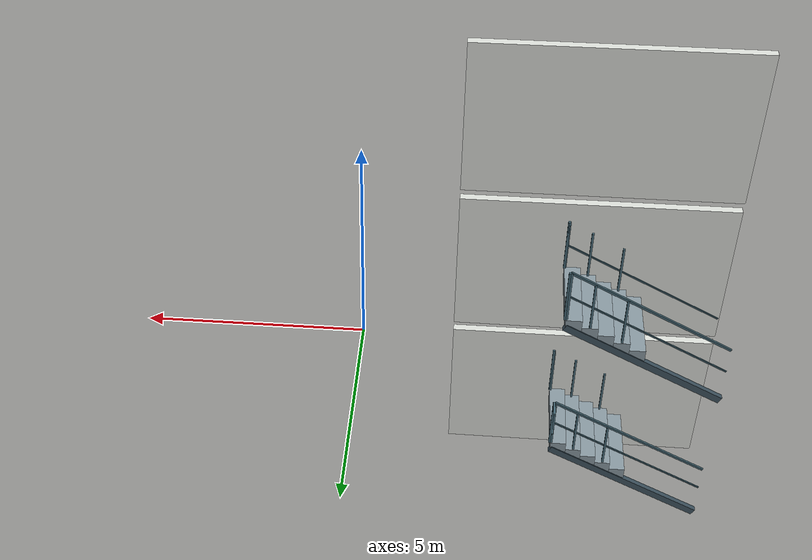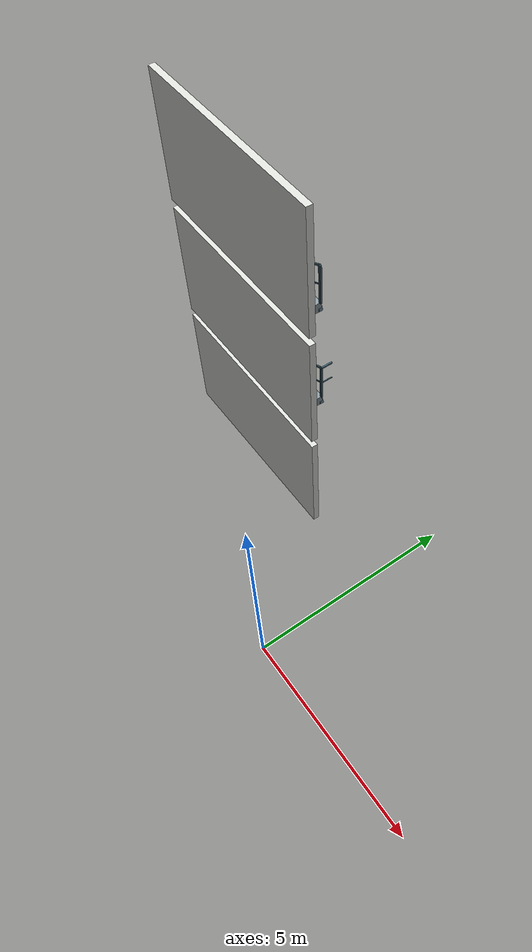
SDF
<sdf version="1.6">
 <world name="three_floor">
  <model name="f1_wall_032">
   <static>true</static>
   <pose>-4.625 3 1.5 0 0 0</pose>
   <link name="f1_wall_032_link">
    <collision name="f1_wall_032_collision"><geometry><box><size>5.05 0.15 3</size></box></geometry></collision>
    <visual name="f1_wall_032_visual">
     <geometry><box><size>5.05 0.15 3</size></box></geometry>
     <material><ambient>.84 .85 .83 1</ambient><diffuse>.84 .85 .83 1</diffuse></material>
    </visual>
   </link>
  </model>
  <model name="f2_wall_032">
   <static>true</static>
   <pose>-4.625 3 4.7 0 0 0</pose>
   <link name="f2_wall_032_link">
    <collision name="f2_wall_032_collision"><geometry><box><size>5.05 0.15 3</size></box></geometry></collision>
    <visual name="f2_wall_032_visual">
     <geometry><box><size>5.05 0.15 3</size></box></geometry>
     <material><ambient>.84 .85 .83 1</ambient><diffuse>.84 .85 .83 1</diffuse></material>
    </visual>
   </link>
  </model>
  <model name="f3_wall_032">
   <static>true</static>
   <pose>-4.625 3 7.9 0 0 0</pose>
   <link name="f3_wall_032_link">
    <collision name="f3_wall_032_collision"><geometry><box><size>5.05 0.15 3</size></box></geometry></collision>
    <visual name="f3_wall_032_visual">
     <geometry><box><size>5.05 0.15 3</size></box></geometry>
     <material><ambient>.84 .85 .83 1</ambient><diffuse>.84 .85 .83 1</diffuse></material>
    </visual>
   </link>
  </model>
  <model name="f1_stair_south_tread_06">
   <static>true</static>
   <pose>-5.45 3.9 0.83 0 0 0</pose>
   <link name="f1_stair_south_tread_06_link">
    <collision name="f1_stair_south_tread_06_collision">
     <geometry><box><size>0.3 1.5 0.26</size></box></geometry>
     <surface><friction><ode><mu>1.0</mu><mu2>1.0</mu2></ode></friction></surface>
    </collision>
    <visual name="f1_stair_south_tread_06_visual">
     <geometry><box><size>0.3 1.5 0.26</size></box></geometry>
     <material>
      <ambient>0.52 0.58 0.61 1</ambient>
      <diffuse>0.52 0.58 0.61 1</diffuse>
      <specular>0.04 0.04 0.04 1</specular>
     </material>
    </visual>
   </link>
  </model>
  <model name="f1_stair_south_tread_07">
   <static>true</static>
   <pose>-5.15 3.9 0.99 0 0 0</pose>
   <link name="f1_stair_south_tread_07_link">
    <collision name="f1_stair_south_tread_07_collision">
     <geometry><box><size>0.3 1.5 0.26</size></box></geometry>
     <surface><friction><ode><mu>1.0</mu><mu2>1.0</mu2></ode></friction></surface>
    </collision>
    <visual name="f1_stair_south_tread_07_visual">
     <geometry><box><size>0.3 1.5 0.26</size></box></geometry>
     <material>
      <ambient>0.52 0.58 0.61 1</ambient>
      <diffuse>0.52 0.58 0.61 1</diffuse>
      <specular>0.04 0.04 0.04 1</specular>
     </material>
    </visual>
   </link>
  </model>
  <model name="f1_stair_south_tread_08">
   <static>true</static>
   <pose>-4.85 3.9 1.15 0 0 0</pose>
   <link name="f1_stair_south_tread_08_link">
    <collision name="f1_stair_south_tread_08_collision">
     <geometry><box><size>0.3 1.5 0.26</size></box></geometry>
     <surface><friction><ode><mu>1.0</mu><mu2>1.0</mu2></ode></friction></surface>
    </collision>
    <visual name="f1_stair_south_tread_08_visual">
     <geometry><box><size>0.3 1.5 0.26</size></box></geometry>
     <material>
      <ambient>0.52 0.58 0.61 1</ambient>
      <diffuse>0.52 0.58 0.61 1</diffuse>
      <specular>0.04 0.04 0.04 1</specular>
     </material>
    </visual>
   </link>
  </model>
  <model name="f1_stair_south_tread_09">
   <static>true</static>
   <pose>-4.55 3.9 1.31 0 0 0</pose>
   <link name="f1_stair_south_tread_09_link">
    <collision name="f1_stair_south_tread_09_collision">
     <geometry><box><size>0.3 1.5 0.26</size></box></geometry>
     <surface><friction><ode><mu>1.0</mu><mu2>1.0</mu2></ode></friction></surface>
    </collision>
    <visual name="f1_stair_south_tread_09_visual">
     <geometry><box><size>0.3 1.5 0.26</size></box></geometry>
     <material>
      <ambient>0.52 0.58 0.61 1</ambient>
      <diffuse>0.52 0.58 0.61 1</diffuse>
      <specular>0.04 0.04 0.04 1</specular>
     </material>
    </visual>
   </link>
  </model>
  <model name="f1_stair_south_tread_10">
   <static>true</static>
   <pose>-4.25 3.9 1.47 0 0 0</pose>
   <link name="f1_stair_south_tread_10_link">
    <collision name="f1_stair_south_tread_10_collision">
     <geometry><box><size>0.3 1.5 0.26</size></box></geometry>
     <surface><friction><ode><mu>1.0</mu><mu2>1.0</mu2></ode></friction></surface>
    </collision>
    <visual name="f1_stair_south_tread_10_visual">
     <geometry><box><size>0.3 1.5 0.26</size></box></geometry>
     <material>
      <ambient>0.52 0.58 0.61 1</ambient>
      <diffuse>0.52 0.58 0.61 1</diffuse>
      <specular>0.04 0.04 0.04 1</specular>
     </material>
    </visual>
   </link>
  </model>
  <model name="f1_stair_south_outer_post_03">
   <static>true</static>
   <pose>-5.15 3.18 1.62 0 0 0</pose>
   <link name="f1_stair_south_outer_post_03_link">
    <collision name="f1_stair_south_outer_post_03_collision">
     <geometry><box><size>0.04 0.04 1</size></box></geometry>
    </collision>
    <visual name="f1_stair_south_outer_post_03_visual">
     <geometry><box><size>0.04 0.04 1</size></box></geometry>
     <material>
      <ambient>0.26 0.39 0.44 1</ambient>
      <diffuse>0.26 0.39 0.44 1</diffuse>
      <specular>0.04 0.04 0.04 1</specular>
     </material>
    </visual>
   </link>
  </model>
  <model name="f1_stair_south_outer_post_04">
   <static>true</static>
   <pose>-4.55 3.18 1.94 0 0 0</pose>
   <link name="f1_stair_south_outer_post_04_link">
    <collision name="f1_stair_south_outer_post_04_collision">
     <geometry><box><size>0.04 0.04 1</size></box></geometry>
    </collision>
    <visual name="f1_stair_south_outer_post_04_visual">
     <geometry><box><size>0.04 0.04 1</size></box></geometry>
     <material>
      <ambient>0.26 0.39 0.44 1</ambient>
      <diffuse>0.26 0.39 0.44 1</diffuse>
      <specular>0.04 0.04 0.04 1</specular>
     </material>
    </visual>
   </link>
  </model>
  <model name="f1_stair_south_outer_post_05">
   <static>true</static>
   <pose>-4.115 3.18 2.136 0 0 0</pose>
   <link name="f1_stair_south_outer_post_05_link">
    <collision name="f1_stair_south_outer_post_05_collision">
     <geometry><box><size>0.04 0.04 1.072</size></box></geometry>
    </collision>
    <visual name="f1_stair_south_outer_post_05_visual">
     <geometry><box><size>0.04 0.04 1.072</size></box></geometry>
     <material>
      <ambient>0.26 0.39 0.44 1</ambient>
      <diffuse>0.26 0.39 0.44 1</diffuse>
      <specular>0.04 0.04 0.04 1</specular>
     </material>
    </visual>
   </link>
  </model>
  <model name="f1_stair_south_inner_stringer">
   <static>true</static>
   <pose>-5.6 4.62 0.64 0 -0.489957326 0</pose>
   <link name="f1_stair_south_inner_stringer_link">
    <collision name="f1_stair_south_inner_stringer_collision">
     <geometry><box><size>3.4 0.1 0.14</size></box></geometry>
    </collision>
    <visual name="f1_stair_south_inner_stringer_visual">
     <geometry><box><size>3.4 0.1 0.14</size></box></geometry>
     <material>
      <ambient>0.23 0.31 0.36 1</ambient>
      <diffuse>0.23 0.31 0.36 1</diffuse>
      <specular>0.04 0.04 0.04 1</specular>
     </material>
    </visual>
   </link>
  </model>
  <model name="f1_stair_south_inner_handrail">
   <static>true</static>
   <pose>-5.6 4.62 1.88 0 -0.489957326 0</pose>
   <link name="f1_stair_south_inner_handrail_link">
    <collision name="f1_stair_south_inner_handrail_collision">
     <geometry><box><size>3.4 0.04 0.04</size></box></geometry>
    </collision>
    <visual name="f1_stair_south_inner_handrail_visual">
     <geometry><box><size>3.4 0.04 0.04</size></box></geometry>
     <material>
      <ambient>0.26 0.39 0.44 1</ambient>
      <diffuse>0.26 0.39 0.44 1</diffuse>
      <specular>0.04 0.04 0.04 1</specular>
     </material>
    </visual>
   </link>
  </model>
  <model name="f1_stair_south_inner_midrail">
   <static>true</static>
   <pose>-5.6 4.62 1.35 0 -0.489957326 0</pose>
   <link name="f1_stair_south_inner_midrail_link">
    <collision name="f1_stair_south_inner_midrail_collision">
     <geometry><box><size>3.4 0.025 0.025</size></box></geometry>
    </collision>
    <visual name="f1_stair_south_inner_midrail_visual">
     <geometry><box><size>3.4 0.025 0.025</size></box></geometry>
     <material>
      <ambient>0.26 0.39 0.44 1</ambient>
      <diffuse>0.26 0.39 0.44 1</diffuse>
      <specular>0.04 0.04 0.04 1</specular>
     </material>
    </visual>
   </link>
  </model>
  <model name="f1_stair_south_inner_post_03">
   <static>true</static>
   <pose>-5.15 4.62 1.62 0 0 0</pose>
   <link name="f1_stair_south_inner_post_03_link">
    <collision name="f1_stair_south_inner_post_03_collision">
     <geometry><box><size>0.04 0.04 1</size></box></geometry>
    </collision>
    <visual name="f1_stair_south_inner_post_03_visual">
     <geometry><box><size>0.04 0.04 1</size></box></geometry>
     <material>
      <ambient>0.26 0.39 0.44 1</ambient>
      <diffuse>0.26 0.39 0.44 1</diffuse>
      <specular>0.04 0.04 0.04 1</specular>
     </material>
    </visual>
   </link>
  </model>
  <model name="f1_stair_south_inner_post_04">
   <static>true</static>
   <pose>-4.55 4.62 1.94 0 0 0</pose>
   <link name="f1_stair_south_inner_post_04_link">
    <collision name="f1_stair_south_inner_post_04_collision">
     <geometry><box><size>0.04 0.04 1</size></box></geometry>
    </collision>
    <visual name="f1_stair_south_inner_post_04_visual">
     <geometry><box><size>0.04 0.04 1</size></box></geometry>
     <material>
      <ambient>0.26 0.39 0.44 1</ambient>
      <diffuse>0.26 0.39 0.44 1</diffuse>
      <specular>0.04 0.04 0.04 1</specular>
     </material>
    </visual>
   </link>
  </model>
  <model name="f1_stair_south_inner_post_05">
   <static>true</static>
   <pose>-4.115 4.62 2.136 0 0 0</pose>
   <link name="f1_stair_south_inner_post_05_link">
    <collision name="f1_stair_south_inner_post_05_collision">
     <geometry><box><size>0.04 0.04 1.072</size></box></geometry>
    </collision>
    <visual name="f1_stair_south_inner_post_05_visual">
     <geometry><box><size>0.04 0.04 1.072</size></box></geometry>
     <material>
      <ambient>0.26 0.39 0.44 1</ambient>
      <diffuse>0.26 0.39 0.44 1</diffuse>
      <specular>0.04 0.04 0.04 1</specular>
     </material>
    </visual>
   </link>
  </model>
  <model name="f1_stair_mid_south_guard_post_00">
   <static>true</static>
   <pose>-4.1 3.18 2.14 0 0 0</pose>
   <link name="f1_stair_mid_south_guard_post_00_link">
    <collision name="f1_stair_mid_south_guard_post_00_collision">
     <geometry><box><size>0.04 0.04 1.08</size></box></geometry>
    </collision>
    <visual name="f1_stair_mid_south_guard_post_00_visual">
     <geometry><box><size>0.04 0.04 1.08</size></box></geometry>
     <material>
      <ambient>0.26 0.39 0.44 1</ambient>
      <diffuse>0.26 0.39 0.44 1</diffuse>
      <specular>0.04 0.04 0.04 1</specular>
     </material>
    </visual>
   </link>
  </model>
  <model name="f1_stair_mid_west_gap_guard_top">
   <static>true</static>
   <pose>-4.08 4.775 2.68 0 0 1.570796327</pose>
   <link name="f1_stair_mid_west_gap_guard_top_link">
    <collision name="f1_stair_mid_west_gap_guard_top_collision">
     <geometry><box><size>0.31 0.04 0.04</size></box></geometry>
    </collision>
    <visual name="f1_stair_mid_west_gap_guard_top_visual">
     <geometry><box><size>0.31 0.04 0.04</size></box></geometry>
     <material>
      <ambient>0.26 0.39 0.44 1</ambient>
      <diffuse>0.26 0.39 0.44 1</diffuse>
      <specular>0.04 0.04 0.04 1</specular>
     </material>
    </visual>
   </link>
  </model>
  <model name="f1_stair_mid_west_gap_guard_mid">
   <static>true</static>
   <pose>-4.08 4.775 2.15 0 0 1.570796327</pose>
   <link name="f1_stair_mid_west_gap_guard_mid_link">
    <collision name="f1_stair_mid_west_gap_guard_mid_collision">
     <geometry><box><size>0.31 0.025 0.025</size></box></geometry>
    </collision>
    <visual name="f1_stair_mid_west_gap_guard_mid_visual">
     <geometry><box><size>0.31 0.025 0.025</size></box></geometry>
     <material>
      <ambient>0.26 0.39 0.44 1</ambient>
      <diffuse>0.26 0.39 0.44 1</diffuse>
      <specular>0.04 0.04 0.04 1</specular>
     </material>
    </visual>
   </link>
  </model>
  <model name="f1_stair_mid_west_gap_guard_post_00">
   <static>true</static>
   <pose>-4.08 4.62 2.14 0 0 0</pose>
   <link name="f1_stair_mid_west_gap_guard_post_00_link">
    <collision name="f1_stair_mid_west_gap_guard_post_00_collision">
     <geometry><box><size>0.04 0.04 1.08</size></box></geometry>
    </collision>
    <visual name="f1_stair_mid_west_gap_guard_post_00_visual">
     <geometry><box><size>0.04 0.04 1.08</size></box></geometry>
     <material>
      <ambient>0.26 0.39 0.44 1</ambient>
      <diffuse>0.26 0.39 0.44 1</diffuse>
      <specular>0.04 0.04 0.04 1</specular>
     </material>
    </visual>
   </link>
  </model>
  <model name="f2_stair_south_tread_06">
   <static>true</static>
   <pose>-5.45 3.9 4.03 0 0 0</pose>
   <link name="f2_stair_south_tread_06_link">
    <collision name="f2_stair_south_tread_06_collision">
     <geometry><box><size>0.3 1.5 0.26</size></box></geometry>
     <surface><friction><ode><mu>1.0</mu><mu2>1.0</mu2></ode></friction></surface>
    </collision>
    <visual name="f2_stair_south_tread_06_visual">
     <geometry><box><size>0.3 1.5 0.26</size></box></geometry>
     <material>
      <ambient>0.52 0.58 0.61 1</ambient>
      <diffuse>0.52 0.58 0.61 1</diffuse>
      <specular>0.04 0.04 0.04 1</specular>
     </material>
    </visual>
   </link>
  </model>
  <model name="f2_stair_south_tread_07">
   <static>true</static>
   <pose>-5.15 3.9 4.19 0 0 0</pose>
   <link name="f2_stair_south_tread_07_link">
    <collision name="f2_stair_south_tread_07_collision">
     <geometry><box><size>0.3 1.5 0.26</size></box></geometry>
     <surface><friction><ode><mu>1.0</mu><mu2>1.0</mu2></ode></friction></surface>
    </collision>
    <visual name="f2_stair_south_tread_07_visual">
     <geometry><box><size>0.3 1.5 0.26</size></box></geometry>
     <material>
      <ambient>0.52 0.58 0.61 1</ambient>
      <diffuse>0.52 0.58 0.61 1</diffuse>
      <specular>0.04 0.04 0.04 1</specular>
     </material>
    </visual>
   </link>
  </model>
  <model name="f2_stair_south_tread_08">
   <static>true</static>
   <pose>-4.85 3.9 4.35 0 0 0</pose>
   <link name="f2_stair_south_tread_08_link">
    <collision name="f2_stair_south_tread_08_collision">
     <geometry><box><size>0.3 1.5 0.26</size></box></geometry>
     <surface><friction><ode><mu>1.0</mu><mu2>1.0</mu2></ode></friction></surface>
    </collision>
    <visual name="f2_stair_south_tread_08_visual">
     <geometry><box><size>0.3 1.5 0.26</size></box></geometry>
     <material>
      <ambient>0.52 0.58 0.61 1</ambient>
      <diffuse>0.52 0.58 0.61 1</diffuse>
      <specular>0.04 0.04 0.04 1</specular>
     </material>
    </visual>
   </link>
  </model>
  <model name="f2_stair_south_tread_09">
   <static>true</static>
   <pose>-4.55 3.9 4.51 0 0 0</pose>
   <link name="f2_stair_south_tread_09_link">
    <collision name="f2_stair_south_tread_09_collision">
     <geometry><box><size>0.3 1.5 0.26</size></box></geometry>
     <surface><friction><ode><mu>1.0</mu><mu2>1.0</mu2></ode></friction></surface>
    </collision>
    <visual name="f2_stair_south_tread_09_visual">
     <geometry><box><size>0.3 1.5 0.26</size></box></geometry>
     <material>
      <ambient>0.52 0.58 0.61 1</ambient>
      <diffuse>0.52 0.58 0.61 1</diffuse>
      <specular>0.04 0.04 0.04 1</specular>
     </material>
    </visual>
   </link>
  </model>
  <model name="f2_stair_south_tread_10">
   <static>true</static>
   <pose>-4.25 3.9 4.67 0 0 0</pose>
   <link name="f2_stair_south_tread_10_link">
    <collision name="f2_stair_south_tread_10_collision">
     <geometry><box><size>0.3 1.5 0.26</size></box></geometry>
     <surface><friction><ode><mu>1.0</mu><mu2>1.0</mu2></ode></friction></surface>
    </collision>
    <visual name="f2_stair_south_tread_10_visual">
     <geometry><box><size>0.3 1.5 0.26</size></box></geometry>
     <material>
      <ambient>0.52 0.58 0.61 1</ambient>
      <diffuse>0.52 0.58 0.61 1</diffuse>
      <specular>0.04 0.04 0.04 1</specular>
     </material>
    </visual>
   </link>
  </model>
  <model name="f2_stair_south_outer_midrail">
   <static>true</static>
   <pose>-5.6 3.18 4.55 0 -0.489957326 0</pose>
   <link name="f2_stair_south_outer_midrail_link">
    <collision name="f2_stair_south_outer_midrail_collision">
     <geometry><box><size>3.4 0.025 0.025</size></box></geometry>
    </collision>
    <visual name="f2_stair_south_outer_midrail_visual">
     <geometry><box><size>3.4 0.025 0.025</size></box></geometry>
     <material>
      <ambient>0.26 0.39 0.44 1</ambient>
      <diffuse>0.26 0.39 0.44 1</diffuse>
      <specular>0.04 0.04 0.04 1</specular>
     </material>
    </visual>
   </link>
  </model>
  <model name="f2_stair_south_outer_post_03">
   <static>true</static>
   <pose>-5.15 3.18 4.82 0 0 0</pose>
   <link name="f2_stair_south_outer_post_03_link">
    <collision name="f2_stair_south_outer_post_03_collision">
     <geometry><box><size>0.04 0.04 1</size></box></geometry>
    </collision>
    <visual name="f2_stair_south_outer_post_03_visual">
     <geometry><box><size>0.04 0.04 1</size></box></geometry>
     <material>
      <ambient>0.26 0.39 0.44 1</ambient>
      <diffuse>0.26 0.39 0.44 1</diffuse>
      <specular>0.04 0.04 0.04 1</specular>
     </material>
    </visual>
   </link>
  </model>
  <model name="f2_stair_south_outer_post_04">
   <static>true</static>
   <pose>-4.55 3.18 5.14 0 0 0</pose>
   <link name="f2_stair_south_outer_post_04_link">
    <collision name="f2_stair_south_outer_post_04_collision">
     <geometry><box><size>0.04 0.04 1</size></box></geometry>
    </collision>
    <visual name="f2_stair_south_outer_post_04_visual">
     <geometry><box><size>0.04 0.04 1</size></box></geometry>
     <material>
      <ambient>0.26 0.39 0.44 1</ambient>
      <diffuse>0.26 0.39 0.44 1</diffuse>
      <specular>0.04 0.04 0.04 1</specular>
     </material>
    </visual>
   </link>
  </model>
  <model name="f2_stair_south_outer_post_05">
   <static>true</static>
   <pose>-4.115 3.18 5.336 0 0 0</pose>
   <link name="f2_stair_south_outer_post_05_link">
    <collision name="f2_stair_south_outer_post_05_collision">
     <geometry><box><size>0.04 0.04 1.072</size></box></geometry>
    </collision>
    <visual name="f2_stair_south_outer_post_05_visual">
     <geometry><box><size>0.04 0.04 1.072</size></box></geometry>
     <material>
      <ambient>0.26 0.39 0.44 1</ambient>
      <diffuse>0.26 0.39 0.44 1</diffuse>
      <specular>0.04 0.04 0.04 1</specular>
     </material>
    </visual>
   </link>
  </model>
  <model name="f2_stair_south_inner_stringer">
   <static>true</static>
   <pose>-5.6 4.62 3.84 0 -0.489957326 0</pose>
   <link name="f2_stair_south_inner_stringer_link">
    <collision name="f2_stair_south_inner_stringer_collision">
     <geometry><box><size>3.4 0.1 0.14</size></box></geometry>
    </collision>
    <visual name="f2_stair_south_inner_stringer_visual">
     <geometry><box><size>3.4 0.1 0.14</size></box></geometry>
     <material>
      <ambient>0.23 0.31 0.36 1</ambient>
      <diffuse>0.23 0.31 0.36 1</diffuse>
      <specular>0.04 0.04 0.04 1</specular>
     </material>
    </visual>
   </link>
  </model>
  <model name="f2_stair_south_inner_handrail">
   <static>true</static>
   <pose>-5.6 4.62 5.08 0 -0.489957326 0</pose>
   <link name="f2_stair_south_inner_handrail_link">
    <collision name="f2_stair_south_inner_handrail_collision">
     <geometry><box><size>3.4 0.04 0.04</size></box></geometry>
    </collision>
    <visual name="f2_stair_south_inner_handrail_visual">
     <geometry><box><size>3.4 0.04 0.04</size></box></geometry>
     <material>
      <ambient>0.26 0.39 0.44 1</ambient>
      <diffuse>0.26 0.39 0.44 1</diffuse>
      <specular>0.04 0.04 0.04 1</specular>
     </material>
    </visual>
   </link>
  </model>
  <model name="f2_stair_south_inner_midrail">
   <static>true</static>
   <pose>-5.6 4.62 4.55 0 -0.489957326 0</pose>
   <link name="f2_stair_south_inner_midrail_link">
    <collision name="f2_stair_south_inner_midrail_collision">
     <geometry><box><size>3.4 0.025 0.025</size></box></geometry>
    </collision>
    <visual name="f2_stair_south_inner_midrail_visual">
     <geometry><box><size>3.4 0.025 0.025</size></box></geometry>
     <material>
      <ambient>0.26 0.39 0.44 1</ambient>
      <diffuse>0.26 0.39 0.44 1</diffuse>
      <specular>0.04 0.04 0.04 1</specular>
     </material>
    </visual>
   </link>
  </model>
  <model name="f2_stair_south_inner_post_03">
   <static>true</static>
   <pose>-5.15 4.62 4.82 0 0 0</pose>
   <link name="f2_stair_south_inner_post_03_link">
    <collision name="f2_stair_south_inner_post_03_collision">
     <geometry><box><size>0.04 0.04 1</size></box></geometry>
    </collision>
    <visual name="f2_stair_south_inner_post_03_visual">
     <geometry><box><size>0.04 0.04 1</size></box></geometry>
     <material>
      <ambient>0.26 0.39 0.44 1</ambient>
      <diffuse>0.26 0.39 0.44 1</diffuse>
      <specular>0.04 0.04 0.04 1</specular>
     </material>
    </visual>
   </link>
  </model>
  <model name="f2_stair_south_inner_post_04">
   <static>true</static>
   <pose>-4.55 4.62 5.14 0 0 0</pose>
   <link name="f2_stair_south_inner_post_04_link">
    <collision name="f2_stair_south_inner_post_04_collision">
     <geometry><box><size>0.04 0.04 1</size></box></geometry>
    </collision>
    <visual name="f2_stair_south_inner_post_04_visual">
     <geometry><box><size>0.04 0.04 1</size></box></geometry>
     <material>
      <ambient>0.26 0.39 0.44 1</ambient>
      <diffuse>0.26 0.39 0.44 1</diffuse>
      <specular>0.04 0.04 0.04 1</specular>
     </material>
    </visual>
   </link>
  </model>
  <model name="f2_stair_south_inner_post_05">
   <static>true</static>
   <pose>-4.115 4.62 5.336 0 0 0</pose>
   <link name="f2_stair_south_inner_post_05_link">
    <collision name="f2_stair_south_inner_post_05_collision">
     <geometry><box><size>0.04 0.04 1.072</size></box></geometry>
    </collision>
    <visual name="f2_stair_south_inner_post_05_visual">
     <geometry><box><size>0.04 0.04 1.072</size></box></geometry>
     <material>
      <ambient>0.26 0.39 0.44 1</ambient>
      <diffuse>0.26 0.39 0.44 1</diffuse>
      <specular>0.04 0.04 0.04 1</specular>
     </material>
    </visual>
   </link>
  </model>
  <model name="f2_stair_mid_south_guard_post_00">
   <static>true</static>
   <pose>-4.1 3.18 5.34 0 0 0</pose>
   <link name="f2_stair_mid_south_guard_post_00_link">
    <collision name="f2_stair_mid_south_guard_post_00_collision">
     <geometry><box><size>0.04 0.04 1.08</size></box></geometry>
    </collision>
    <visual name="f2_stair_mid_south_guard_post_00_visual">
     <geometry><box><size>0.04 0.04 1.08</size></box></geometry>
     <material>
      <ambient>0.26 0.39 0.44 1</ambient>
      <diffuse>0.26 0.39 0.44 1</diffuse>
      <specular>0.04 0.04 0.04 1</specular>
     </material>
    </visual>
   </link>
  </model>
  <model name="f2_stair_mid_west_gap_guard_post_00">
   <static>true</static>
   <pose>-4.08 4.62 5.34 0 0 0</pose>
   <link name="f2_stair_mid_west_gap_guard_post_00_link">
    <collision name="f2_stair_mid_west_gap_guard_post_00_collision">
     <geometry><box><size>0.04 0.04 1.08</size></box></geometry>
    </collision>
    <visual name="f2_stair_mid_west_gap_guard_post_00_visual">
     <geometry><box><size>0.04 0.04 1.08</size></box></geometry>
     <material>
      <ambient>0.26 0.39 0.44 1</ambient>
      <diffuse>0.26 0.39 0.44 1</diffuse>
      <specular>0.04 0.04 0.04 1</specular>
     </material>
    </visual>
   </link>
  </model>
 </world>
</sdf>
